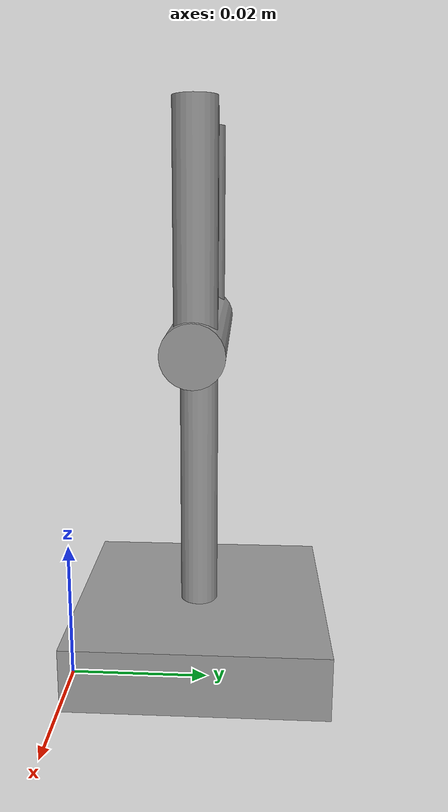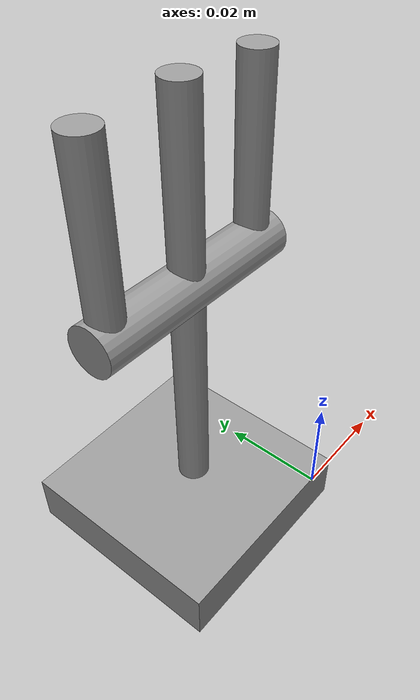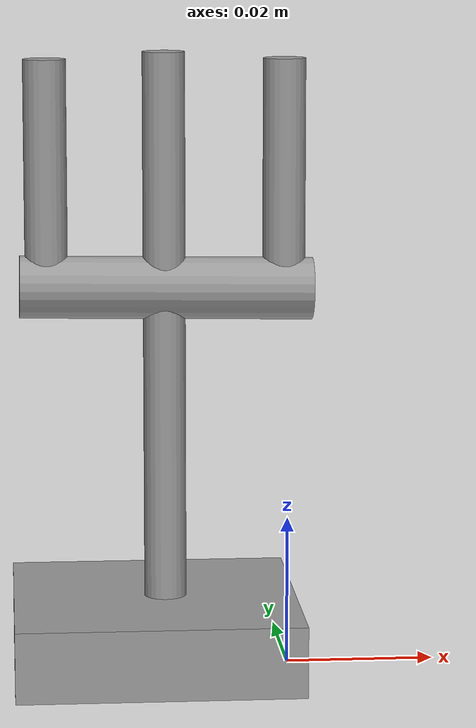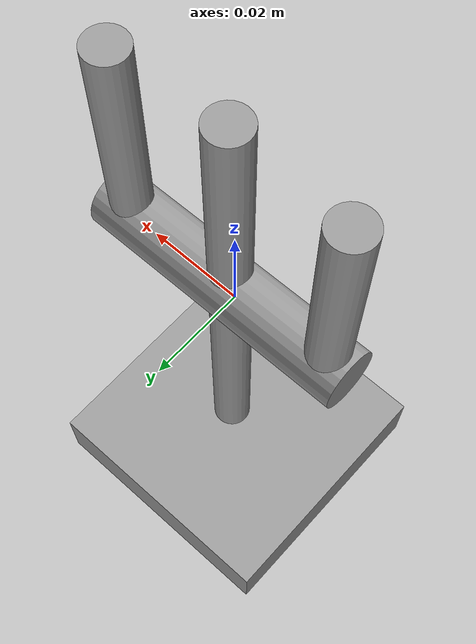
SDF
<?xml version='1.0'?>
<sdf version='1.6'>
  <model name='fourchette'>
    <link name='link'>
      <inertial>
        <mass>0.0336431</mass>
        <inertia>
          <ixx>4.51e-06</ixx>
          <ixy>0</ixy>
          <ixz>0</ixz>
          <iyy>4.51e-06</iyy>
          <iyz>0</iyz>
          <izz>8.97e-06</izz>
        </inertia>
        <pose frame=''>0 0 0 0 -0 0</pose>
      </inertial>
      <self_collide>0</self_collide>
      <enable_wind>0</enable_wind>
      <kinematic>0</kinematic>
      <pose frame=''>-0.017139 0.018322 0 0 -0 0</pose>
      <gravity>1</gravity>
      <visual name='visual'>
        <geometry>
          <box>
            <size>0.04 0.04 0.01</size>
          </box>
        </geometry>
        <material>
          <script>
            <name>Gazebo/Grey</name>
            <uri>file://media/materials/scripts/gazebo.material</uri>
          </script>
          <emissive>0 0 0 1</emissive>
          <shader type='vertex'>
            <normal_map>__default__</normal_map>
          </shader>
          <ambient>0.75 0.75 0.75 1</ambient>
          <diffuse>0.75 0.75 0.75 1</diffuse>
          <specular>0.75 0.75 0.75 1</specular>
        </material>
        <pose frame=''>0 0 0 0 -0 0</pose>
        <transparency>0</transparency>
        <cast_shadows>1</cast_shadows>
      </visual>
      <collision name='collision'>
        <laser_retro>0</laser_retro>
        <max_contacts>10</max_contacts>
        <pose frame=''>0 0 0 0 -0 0</pose>
        <geometry>
          <box>
            <size>0.04 0.04 0.01</size>
          </box>
        </geometry>
        <surface>
          <friction>
            <ode>
              <mu>1</mu>
              <mu2>1</mu2>
              <fdir1>0 0 0</fdir1>
              <slip1>0</slip1>
              <slip2>0</slip2>
            </ode>
            <torsional>
              <coefficient>1</coefficient>
              <patch_radius>0</patch_radius>
              <surface_radius>0</surface_radius>
              <use_patch_radius>1</use_patch_radius>
              <ode>
                <slip>0</slip>
              </ode>
            </torsional>
          </friction>
          <bounce>
            <restitution_coefficient>0</restitution_coefficient>
            <threshold>1e+06</threshold>
          </bounce>
          <contact>
            <collide_without_contact>0</collide_without_contact>
            <collide_without_contact_bitmask>1</collide_without_contact_bitmask>
            <collide_bitmask>1</collide_bitmask>
            <ode>
              <soft_cfm>0</soft_cfm>
              <soft_erp>0.2</soft_erp>
              <kp>1e+13</kp>
              <kd>1</kd>
              <max_vel>0.01</max_vel>
              <min_depth>0</min_depth>
            </ode>
            <bullet>
              <split_impulse>1</split_impulse>
              <split_impulse_penetration_threshold>-0.01</split_impulse_penetration_threshold>
              <soft_cfm>0</soft_cfm>
              <soft_erp>0.2</soft_erp>
              <kp>1e+13</kp>
              <kd>1</kd>
            </bullet>
          </contact>
        </surface>
      </collision>
    </link>
    <link name='link_0'>
      <inertial>
        <mass>2.88685e-06</mass>
        <inertia>
          <ixx>1.44637e-09</ixx>
          <ixy>0</ixy>
          <ixz>0</ixz>
          <iyy>1.44637e-09</iyy>
          <iyz>0</iyz>
          <izz>1.26277e-11</izz>
        </inertia>
        <pose frame=''>0 0 0 0 -0 0</pose>
      </inertial>
      <pose frame=''>-0.015604 0.017977 0.043354 0 -0 3e-06</pose>
      <self_collide>0</self_collide>
      <enable_wind>0</enable_wind>
      <kinematic>0</kinematic>
      <visual name='visual'>
        <pose frame=''>0 0 0 0 -0 0</pose>
        <geometry>
          <cylinder>
            <radius>0.0029579</radius>
            <length>0.0773691</length>
          </cylinder>
        </geometry>
        <material>
          <lighting>1</lighting>
          <script>
            <uri>file://media/materials/scripts/gazebo.material</uri>
            <name>Gazebo/Grey</name>
          </script>
          <emissive>0 0 0 1</emissive>
          <shader type='pixel'/>
        </material>
        <transparency>0</transparency>
        <cast_shadows>1</cast_shadows>
      </visual>
      <collision name='collision'>
        <laser_retro>0</laser_retro>
        <max_contacts>10</max_contacts>
        <pose frame=''>0 0 0 0 -0 0</pose>
        <geometry>
          <cylinder>
            <radius>0.003</radius>
            <length>0.077369</length>
          </cylinder>
        </geometry>
        <surface>
          <friction>
            <ode>
              <mu>1</mu>
              <mu2>1</mu2>
              <fdir1>0 0 0</fdir1>
              <slip1>0</slip1>
              <slip2>0</slip2>
            </ode>
            <torsional>
              <coefficient>1</coefficient>
              <patch_radius>0</patch_radius>
              <surface_radius>0</surface_radius>
              <use_patch_radius>1</use_patch_radius>
              <ode>
                <slip>0</slip>
              </ode>
            </torsional>
          </friction>
          <bounce>
            <restitution_coefficient>0</restitution_coefficient>
            <threshold>1e+06</threshold>
          </bounce>
          <contact>
            <collide_without_contact>0</collide_without_contact>
            <collide_without_contact_bitmask>1</collide_without_contact_bitmask>
            <collide_bitmask>1</collide_bitmask>
            <ode>
              <soft_cfm>0</soft_cfm>
              <soft_erp>0.2</soft_erp>
              <kp>1e+13</kp>
              <kd>1</kd>
              <max_vel>0.01</max_vel>
              <min_depth>0</min_depth>
            </ode>
            <bullet>
              <split_impulse>1</split_impulse>
              <split_impulse_penetration_threshold>-0.01</split_impulse_penetration_threshold>
              <soft_cfm>0</soft_cfm>
              <soft_erp>0.2</soft_erp>
              <kp>1e+13</kp>
              <kd>1</kd>
            </bullet>
          </contact>
        </surface>
      </collision>
    </link>
    <link name='link_0_0'>
      <inertial>
        <mass>3.07383e-06</mass>
        <inertia>
          <ixx>4.44893e-10</ixx>
          <ixy>0</ixy>
          <ixz>0</ixz>
          <iyy>4.44893e-10</iyy>
          <iyz>0</iyz>
          <izz>2.94964e-11</izz>
        </inertia>
        <pose frame=''>0 0 0 0 -0 0</pose>
      </inertial>
      <pose frame=''>-0.015297 0.018344 0.049109 2.52561 1.55224 2.52541</pose>
      <self_collide>0</self_collide>
      <enable_wind>0</enable_wind>
      <kinematic>0</kinematic>
      <visual name='visual'>
        <pose frame=''>0 0 0 0 -0 0</pose>
        <geometry>
          <cylinder>
            <radius>0.00438092</radius>
            <length>0.0409787</length>
          </cylinder>
        </geometry>
        <material>
          <lighting>1</lighting>
          <script>
            <uri>file://media/materials/scripts/gazebo.material</uri>
            <name>Gazebo/Grey</name>
          </script>
          <emissive>0 0 0 1</emissive>
          <shader type='pixel'/>
        </material>
        <transparency>0</transparency>
        <cast_shadows>1</cast_shadows>
      </visual>
      <collision name='collision'>
        <laser_retro>0</laser_retro>
        <max_contacts>10</max_contacts>
        <pose frame=''>0 0 0 0 -0 0</pose>
        <geometry>
          <cylinder>
            <radius>0.004381</radius>
            <length>0.040979</length>
          </cylinder>
        </geometry>
        <surface>
          <friction>
            <ode>
              <mu>1</mu>
              <mu2>1</mu2>
              <fdir1>0 0 0</fdir1>
              <slip1>0</slip1>
              <slip2>0</slip2>
            </ode>
            <torsional>
              <coefficient>1</coefficient>
              <patch_radius>0</patch_radius>
              <surface_radius>0</surface_radius>
              <use_patch_radius>1</use_patch_radius>
              <ode>
                <slip>0</slip>
              </ode>
            </torsional>
          </friction>
          <bounce>
            <restitution_coefficient>0</restitution_coefficient>
            <threshold>1e+06</threshold>
          </bounce>
          <contact>
            <collide_without_contact>0</collide_without_contact>
            <collide_without_contact_bitmask>1</collide_without_contact_bitmask>
            <collide_bitmask>1</collide_bitmask>
            <ode>
              <soft_cfm>0</soft_cfm>
              <soft_erp>0.2</soft_erp>
              <kp>1e+13</kp>
              <kd>1</kd>
              <max_vel>0.01</max_vel>
              <min_depth>0</min_depth>
            </ode>
            <bullet>
              <split_impulse>1</split_impulse>
              <split_impulse_penetration_threshold>-0.01</split_impulse_penetration_threshold>
              <soft_cfm>0</soft_cfm>
              <soft_erp>0.2</soft_erp>
              <kp>1e+13</kp>
              <kd>1</kd>
            </bullet>
          </contact>
        </surface>
      </collision>
    </link>
    <link name='link_0_1_clone'>
      <inertial>
        <mass>1.06115e-06</mass>
        <inertia>
          <ixx>9.99492e-11</ixx>
          <ixy>0</ixy>
          <ixz>0</ixz>
          <iyy>9.99492e-11</iyy>
          <iyz>0</iyz>
          <izz>4.686e-12</izz>
        </inertia>
        <pose frame=''>0 0 0 0 -0 0</pose>
      </inertial>
      <pose frame=''>-0.03203 0.018415 0.064431 -0.000238 -1.8e-05 -3.14052</pose>
      <self_collide>0</self_collide>
      <enable_wind>0</enable_wind>
      <kinematic>0</kinematic>
      <visual name='visual_0'>
        <pose frame=''>0 0 0 0 -0 0</pose>
        <geometry>
          <cylinder>
            <radius>0.00297167</radius>
            <length>0.0332233</length>
          </cylinder>
        </geometry>
        <material>
          <lighting>1</lighting>
          <script>
            <uri>file://media/materials/scripts/gazebo.material</uri>
            <name>Gazebo/Grey</name>
          </script>
          <shader type='pixel'/>
          <emissive>0 0 0 1</emissive>
        </material>
        <transparency>0</transparency>
        <cast_shadows>1</cast_shadows>
      </visual>
      <collision name='collision'>
        <laser_retro>0</laser_retro>
        <max_contacts>10</max_contacts>
        <pose frame=''>0 0 0 0 -0 0</pose>
        <geometry>
          <cylinder>
            <radius>0.002972</radius>
            <length>0.033223</length>
          </cylinder>
        </geometry>
        <surface>
          <friction>
            <ode>
              <mu>1</mu>
              <mu2>1</mu2>
              <fdir1>0 0 0</fdir1>
              <slip1>0</slip1>
              <slip2>0</slip2>
            </ode>
            <torsional>
              <coefficient>1</coefficient>
              <patch_radius>0</patch_radius>
              <surface_radius>0</surface_radius>
              <use_patch_radius>1</use_patch_radius>
              <ode>
                <slip>0</slip>
              </ode>
            </torsional>
          </friction>
          <bounce>
            <restitution_coefficient>0</restitution_coefficient>
            <threshold>1e+06</threshold>
          </bounce>
          <contact>
            <collide_without_contact>0</collide_without_contact>
            <collide_without_contact_bitmask>1</collide_without_contact_bitmask>
            <collide_bitmask>1</collide_bitmask>
            <ode>
              <soft_cfm>0</soft_cfm>
              <soft_erp>0.2</soft_erp>
              <kp>1e+13</kp>
              <kd>1</kd>
              <max_vel>0.01</max_vel>
              <min_depth>0</min_depth>
            </ode>
            <bullet>
              <split_impulse>1</split_impulse>
              <split_impulse_penetration_threshold>-0.01</split_impulse_penetration_threshold>
              <soft_cfm>0</soft_cfm>
              <soft_erp>0.2</soft_erp>
              <kp>1e+13</kp>
              <kd>1</kd>
            </bullet>
          </contact>
        </surface>
      </collision>
    </link>
    <link name='link_0_1_clone_clone'>
      <inertial>
        <mass>1.06115e-06</mass>
        <inertia>
          <ixx>9.99492e-11</ixx>
          <ixy>0</ixy>
          <ixz>0</ixz>
          <iyy>9.99492e-11</iyy>
          <iyz>0</iyz>
          <izz>4.686e-12</izz>
        </inertia>
        <pose frame=''>0 0 0 0 -0 0</pose>
      </inertial>
      <pose frame=''>0.001244 0.018559 0.064434 -0.000128 0.000109 -1.61478</pose>
      <self_collide>0</self_collide>
      <enable_wind>0</enable_wind>
      <kinematic>0</kinematic>
      <visual name='visual_0'>
        <pose frame=''>0 0 0 0 -0 0</pose>
        <geometry>
          <cylinder>
            <radius>0.00297167</radius>
            <length>0.0332233</length>
          </cylinder>
        </geometry>
        <material>
          <lighting>1</lighting>
          <script>
            <uri>file://media/materials/scripts/gazebo.material</uri>
            <name>Gazebo/Grey</name>
          </script>
          <shader type='pixel'/>
          <emissive>0 0 0 1</emissive>
        </material>
        <transparency>0</transparency>
        <cast_shadows>1</cast_shadows>
      </visual>
      <collision name='collision'>
        <laser_retro>0</laser_retro>
        <max_contacts>10</max_contacts>
        <pose frame=''>0 0 0 0 -0 0</pose>
        <geometry>
          <cylinder>
            <radius>0.002972</radius>
            <length>0.033223</length>
          </cylinder>
        </geometry>
        <surface>
          <friction>
            <ode>
              <mu>1</mu>
              <mu2>1</mu2>
              <fdir1>0 0 0</fdir1>
              <slip1>0</slip1>
              <slip2>0</slip2>
            </ode>
            <torsional>
              <coefficient>1</coefficient>
              <patch_radius>0</patch_radius>
              <surface_radius>0</surface_radius>
              <use_patch_radius>1</use_patch_radius>
              <ode>
                <slip>0</slip>
              </ode>
            </torsional>
          </friction>
          <bounce>
            <restitution_coefficient>0</restitution_coefficient>
            <threshold>1e+06</threshold>
          </bounce>
          <contact>
            <collide_without_contact>0</collide_without_contact>
            <collide_without_contact_bitmask>1</collide_without_contact_bitmask>
            <collide_bitmask>1</collide_bitmask>
            <ode>
              <soft_cfm>0</soft_cfm>
              <soft_erp>0.2</soft_erp>
              <kp>1e+13</kp>
              <kd>1</kd>
              <max_vel>0.01</max_vel>
              <min_depth>0</min_depth>
            </ode>
            <bullet>
              <split_impulse>1</split_impulse>
              <split_impulse_penetration_threshold>-0.01</split_impulse_penetration_threshold>
              <soft_cfm>0</soft_cfm>
              <soft_erp>0.2</soft_erp>
              <kp>1e+13</kp>
              <kd>1</kd>
            </bullet>
          </contact>
        </surface>
      </collision>
    </link>
    <joint name='link_0_0_JOINT_0' type='fixed'>
      <parent>link_0_0</parent>
      <child>link_0_1_clone</child>
      <pose frame=''>0 0 0 0 -0 0</pose>
      <physics>
        <ode>
          <limit>
            <cfm>0</cfm>
            <erp>0.2</erp>
          </limit>
          <suspension>
            <cfm>0</cfm>
            <erp>0.2</erp>
          </suspension>
        </ode>
      </physics>
    </joint>
    <joint name='link_0_0_JOINT_1' type='fixed'>
      <parent>link_0_0</parent>
      <child>link_0_1_clone_clone</child>
      <pose frame=''>0 0 0 0 -0 0</pose>
      <physics>
        <ode>
          <limit>
            <cfm>0</cfm>
            <erp>0.2</erp>
          </limit>
          <suspension>
            <cfm>0</cfm>
            <erp>0.2</erp>
          </suspension>
        </ode>
      </physics>
    </joint>
    <joint name='link_0_JOINT_0' type='fixed'>
      <parent>link_0</parent>
      <child>link_0_0</child>
      <pose frame=''>0 0 0 0 -0 0</pose>
      <physics>
        <ode>
          <limit>
            <cfm>0</cfm>
            <erp>0.2</erp>
          </limit>
          <suspension>
            <cfm>0</cfm>
            <erp>0.2</erp>
          </suspension>
        </ode>
      </physics>
    </joint>
    <joint name='link_JOINT_0' type='fixed'>
      <parent>link</parent>
      <child>link_0</child>
      <pose frame=''>0 0 0 0 -0 0</pose>
      <physics>
        <ode>
          <limit>
            <cfm>0</cfm>
            <erp>0.2</erp>
          </limit>
          <suspension>
            <cfm>0</cfm>
            <erp>0.2</erp>
          </suspension>
        </ode>
      </physics>
    </joint>
    <static>0</static>
    <allow_auto_disable>1</allow_auto_disable>
  </model>
</sdf>
